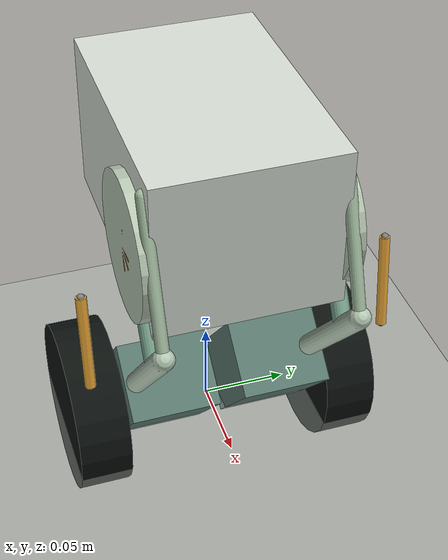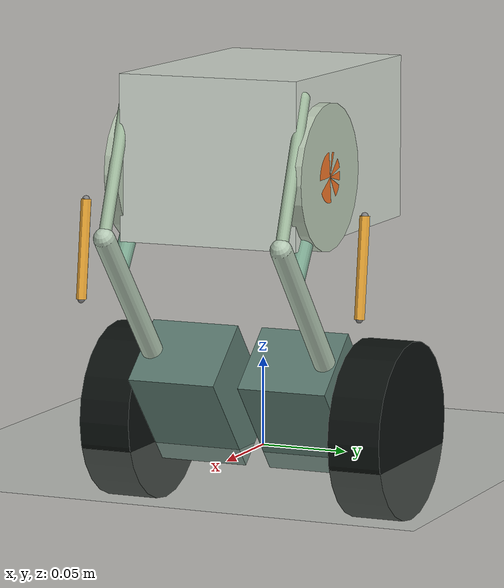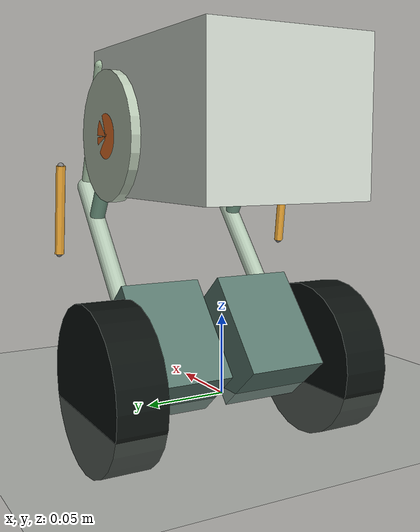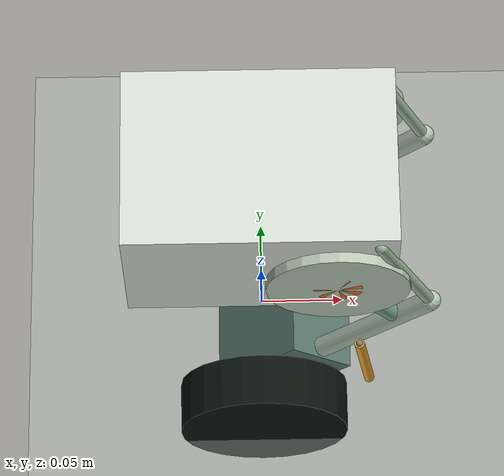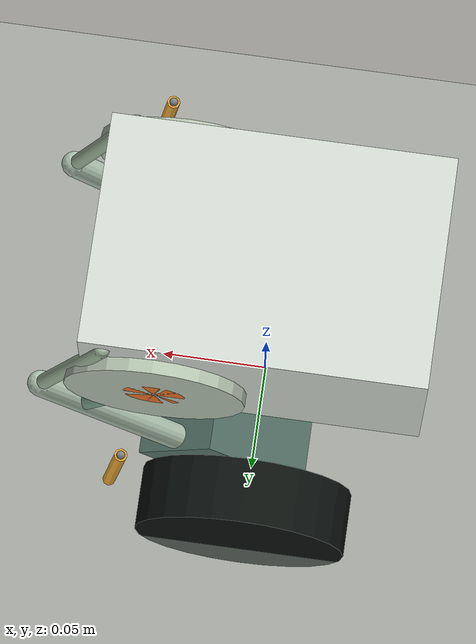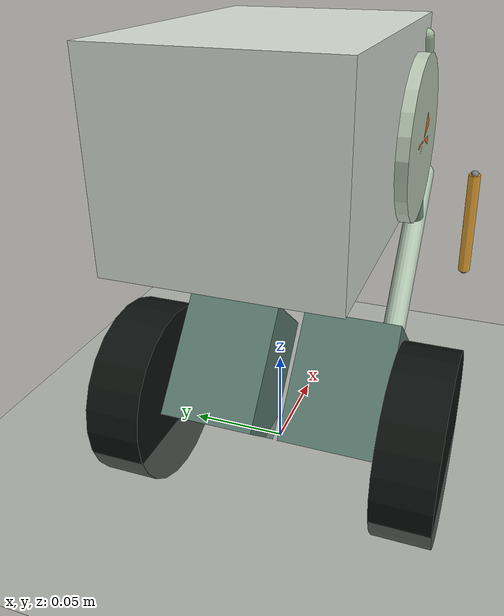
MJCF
<mujoco model="beni_independent_fourbar"><compiler angle="radian" autolimits="true" /><option timestep="0.00025" integrator="implicitfast" iterations="100" gravity="0 0 -9.81" /><visual><global offwidth="1280" offheight="960" /></visual><default><geom friction="0.8 0.005 0.0001" solref=".003 1" solimp=".95 .99 .001" contype="2" conaffinity="1" /><joint damping=".002" frictionloss=".002" /></default><worldbody><geom name="ground" type="plane" size="4 4 .1" rgba=".78 .82 .78 1" contype="1" conaffinity="2" /><light pos="0 -1 2" dir="0 0 -1" /><body name="chassis" pos="0 0 .16"><freejoint name="root" /><inertial pos="-.006 0 .015" mass="1.5259999999999998" diaginertia=".0031 .0045 .0058" /><geom name="body_shell" type="box" pos="0 0 .009" size=".076 .052 .046" rgba=".83 .86 .82 1" /><geom name="right_hip_cover" type="cylinder" pos="0.04290204859622333 -0.054 0.0" size=".0405 .004" quat=".70710678 .70710678 0 0" rgba=".72 .78 .7 1" /><geom name="left_hip_cover" type="cylinder" pos="0.04290204859622333 0.054 0.0" size=".0405 .004" quat=".70710678 .70710678 0 0" rgba=".72 .78 .7 1" /><site name="imu" pos="0 0 .04" size=".002" /><body name="left_upper" pos="0.04290204859622333 0.052 0.0" quat="0.8775825618903728 0.0 0.479425538604203 0.0"><joint name="left_hip" type="hinge" axis="0 1 0" ref="1.0" range=".33 1.52" armature="0.005840000000000001" /><inertial pos="0.03224093873084655 0.0 0.0" mass=".04" diaginertia=".000014 .00003 .00003" /><geom name="left_upper_bar" type="capsule" fromto="0.0 0.0 0.0 0.0644818774616931 0.0 0.0" size=".005" rgba=".48 .65 .56 1" /><geom name="left_hip_hub" type="cylinder" size=".014 .006" quat=".70710678 .70710678 0 0" rgba=".93 .45 .15 1" /><site name="left_spring_upper" pos="0.021481877461693097 0.031 0.0" size=".002" /><body name="left_lower" pos="0.0644818774616931 0.0 0.0" quat="0.8034279143118861 0.0 0.5954020377059962 0.0"><joint name="left_knee" type="hinge" axis="0 1 0" ref="1.2755319178619269" range=".42 2.39" /><inertial pos="0.09529548063296797 -0.012 0.0" mass=".277" diaginertia=".00012 .00045 .00045" /><geom name="left_lower_bar" type="capsule" fromto="-0.028223810393625162 0.0 0.0 0.11911935079120996 0.0 0.0" size=".006" rgba=".7 .78 .7 1" /><geom name="left_motor_collision" type="box" pos="0.09981935079120996 -0.01885 0.0" size=".0345 .02585 .0222" rgba=".35 .47 .43 1" /><site name="left_spring_lower" pos="0.025 0.031 0.0" size=".002" /><site name="left_close_lower" pos="-0.028223810393625162 0.0 0.0" size=".002" /><body name="left_wheel" pos="0.11911935079120996 0.023 0.0" quat="0.4196233847228267 0.0 -0.907698306153404 0.0"><joint name="left_wheel" type="hinge" axis="0 1 0" damping=".0003" frictionloss=".001" /><inertial pos="0 0 0" mass=".10" diaginertia=".00007 .000125 .00007" /><geom name="left_tire" type="cylinder" size=".05 .015" quat=".70710678 .70710678 0 0" condim="4" rgba=".045 .065 .055 1" /></body></body></body><body name="left_tie" pos="0.06559515285040442 0.052 0.04499999999998685" quat="0.8259644345838045 0.0 0.5637222301831426 0.0"><joint name="left_tie" type="hinge" axis="0 1 0" ref="1.1977708639519273" /><inertial pos="0.041750853670468574 0.0 0.0" mass=".02" diaginertia=".000003 .000015 .000015" /><geom name="left_tie_bar" type="capsule" fromto="0.0 0.0 0.0 0.08350170734093715 0.0 0.0" size=".0035" rgba=".63 .73 .62 1" /><site name="left_close_tie" pos="0.08350170734093715 0.0 0.0" size=".002" /></body><body name="right_upper" pos="0.04290204859622333 -0.052 0.0" quat="0.8775825618903728 0.0 0.479425538604203 0.0"><joint name="right_hip" type="hinge" axis="0 1 0" ref="1.0" range=".33 1.52" armature="0.005840000000000001" /><inertial pos="0.03224093873084655 0.0 0.0" mass=".04" diaginertia=".000014 .00003 .00003" /><geom name="right_upper_bar" type="capsule" fromto="0.0 0.0 0.0 0.0644818774616931 0.0 0.0" size=".005" rgba=".48 .65 .56 1" /><geom name="right_hip_hub" type="cylinder" size=".014 .006" quat=".70710678 .70710678 0 0" rgba=".93 .45 .15 1" /><site name="right_spring_upper" pos="0.021481877461693097 -0.031 0.0" size=".002" /><body name="right_lower" pos="0.0644818774616931 0.0 0.0" quat="0.8034279143118861 0.0 0.5954020377059962 0.0"><joint name="right_knee" type="hinge" axis="0 1 0" ref="1.2755319178619269" range=".42 2.39" /><inertial pos="0.09529548063296797 0.012 0.0" mass=".277" diaginertia=".00012 .00045 .00045" /><geom name="right_lower_bar" type="capsule" fromto="-0.028223810393625162 0.0 0.0 0.11911935079120996 0.0 0.0" size=".006" rgba=".7 .78 .7 1" /><geom name="right_motor_collision" type="box" pos="0.09981935079120996 0.01885 0.0" size=".0345 .02585 .0222" rgba=".35 .47 .43 1" /><site name="right_spring_lower" pos="0.025 -0.031 0.0" size=".002" /><site name="right_close_lower" pos="-0.028223810393625162 0.0 0.0" size=".002" /><body name="right_wheel" pos="0.11911935079120996 -0.023 0.0" quat="0.4196233847228267 0.0 -0.907698306153404 0.0"><joint name="right_wheel" type="hinge" axis="0 1 0" damping=".0003" frictionloss=".001" /><inertial pos="0 0 0" mass=".10" diaginertia=".00007 .000125 .00007" /><geom name="right_tire" type="cylinder" size=".05 .015" quat=".70710678 .70710678 0 0" condim="4" rgba=".045 .065 .055 1" /></body></body></body><body name="right_tie" pos="0.06559515285040442 -0.052 0.04499999999998685" quat="0.8259644345838045 0.0 0.5637222301831426 0.0"><joint name="right_tie" type="hinge" axis="0 1 0" ref="1.1977708639519273" /><inertial pos="0.041750853670468574 0.0 0.0" mass=".02" diaginertia=".000003 .000015 .000015" /><geom name="right_tie_bar" type="capsule" fromto="0.0 0.0 0.0 0.08350170734093715 0.0 0.0" size=".0035" rgba=".63 .73 .62 1" /><site name="right_close_tie" pos="0.08350170734093715 0.0 0.0" size=".002" /></body></body></worldbody><equality><connect name="left_closure" site1="left_close_lower" site2="left_close_tie" solref=".002 1" solimp=".999 .9999 .0001" /><connect name="right_closure" site1="right_close_lower" site2="right_close_tie" solref=".002 1" solimp=".999 .9999 .0001" /></equality><tendon><spatial name="left_spring" stiffness="5500" springlength=".05 1" damping="8" width=".003" rgba=".9 .64 .2 1"><site site="left_spring_upper" /><site site="left_spring_lower" /></spatial><spatial name="right_spring" stiffness="5500" springlength=".05 1" damping="8" width=".003" rgba=".9 .64 .2 1"><site site="right_spring_upper" /><site site="right_spring_lower" /></spatial></tendon><actuator><motor name="left_wheel_drive" joint="left_wheel" ctrlrange="-.45 .45" /><motor name="right_wheel_drive" joint="right_wheel" ctrlrange="-.45 .45" /><motor name="left_hip_drive" joint="left_hip" ctrlrange="-10 10" /><motor name="right_hip_drive" joint="right_hip" ctrlrange="-10 10" /></actuator><sensor><gyro name="gyro" site="imu" /><accelerometer name="accelerometer" site="imu" /></sensor></mujoco>
